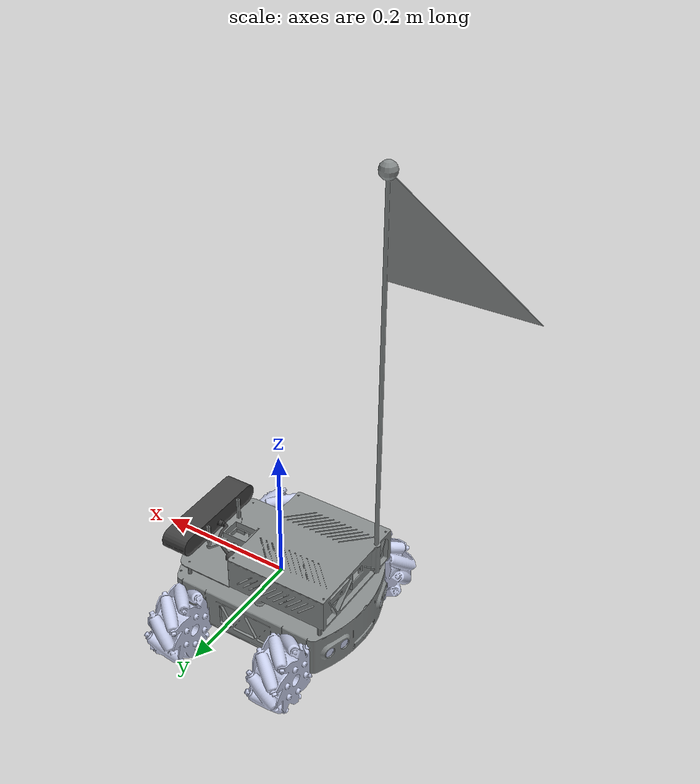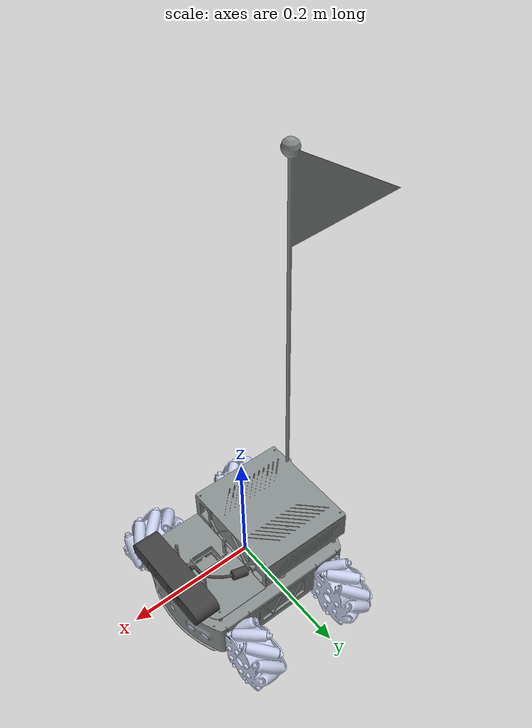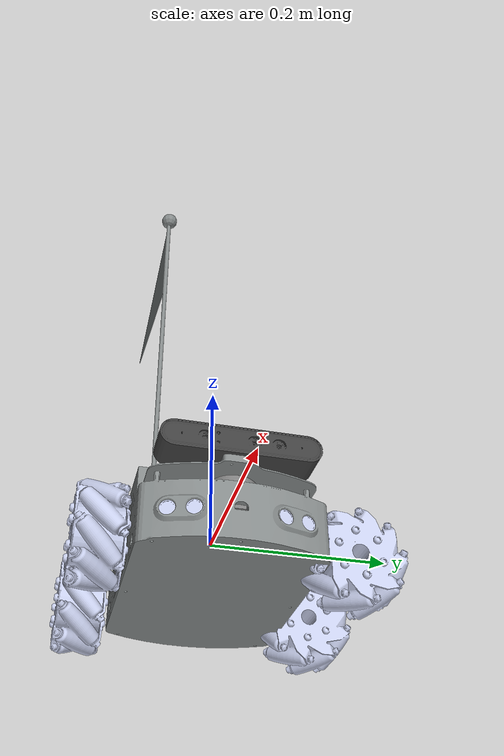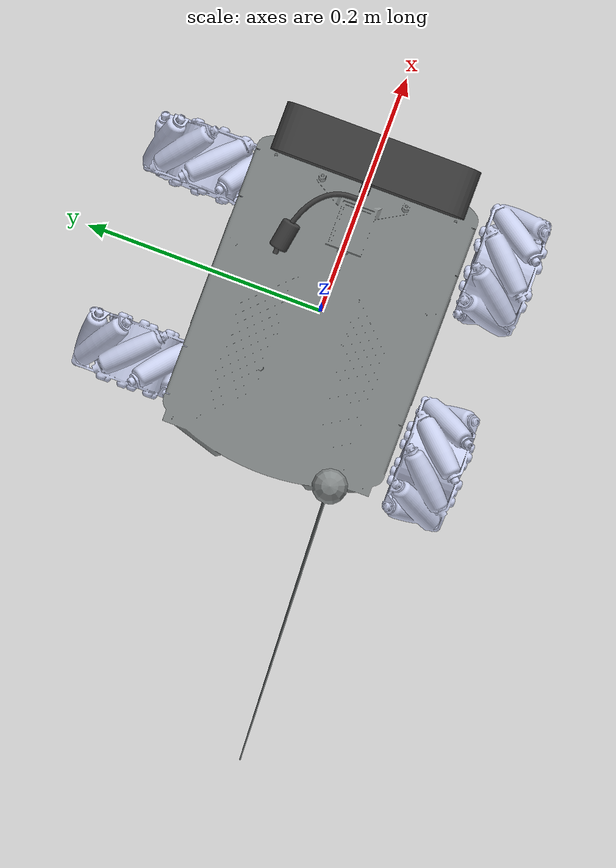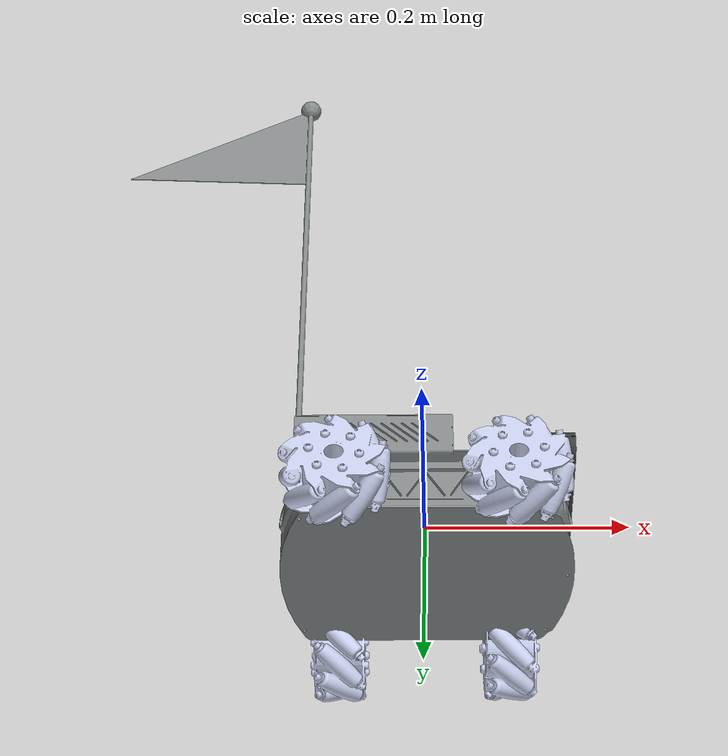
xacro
<?xml version="1.0" encoding="utf-8"?>
<robot
  name="robot_base" xmlns:xacro="http://www.ros.org/wiki/xacro">
  <xacro:property name="radius" value="0.055" />
  <xacro:property name="length" value="0.05" />
  <xacro:property name="wheel_orientation" value="1 0 0" />
  <xacro:property name="collision_transform" value="0 1.57079632679 1.57079632679" />

  <link
    name="base_link">
    <inertial>
      <origin
        xyz="-0.0111443854086884 -0.000831975562567948 0.00395208351304286"
        rpy="0 0 0" />
      <mass
        value="2.57903452705291" />
      <inertia
        ixx="0.010097194230352"
        ixy="-4.37392111784297E-06"
        ixz="0.000240822381205553"
        iyy="0.0132093250149844"
        iyz="7.47840581370496E-07"
        izz="0.020314109789297" />
    </inertial>
    <visual>
      <origin
        xyz="0 0 0"
        rpy="0 0 0" />
      <geometry>
        <mesh
          filename="package://mirte_description/meshes/base_link.STL" />
      </geometry>
      <material
        name="">
        <color
          rgba="0.529411764705882 0.549019607843137 0.549019607843137 1" />
      </material>
    </visual>
    <collision>
      <origin
        xyz="0 0 0"
        rpy="0 0 0" />
      <geometry>
        <mesh
          filename="package://mirte_description/meshes/base_link.STL" />
      </geometry>
    </collision>
  </link>
  <link
    name="front_left_wheel_link">
    <inertial>
      <origin
        xyz="-1.12107309546694E-10 6.41072041116242E-05 2.92491794673388E-10"
        rpy="0 0 0" />
      <mass
        value="0.266614983225976" />
      <inertia
        ixx="8.05457942774813E-05"
        ixy="-1.2260463258983E-14"
        ixz="1.96734401516725E-15"
        iyy="9.31956038960016E-05"
        iyz="-9.68885005345804E-15"
        izz="8.05457942705124E-05" />
    </inertial>
    <visual>
      <origin
        xyz="0 0 0"
        rpy="0 0 0" />
      <geometry>
        <mesh
          filename="package://mirte_description/meshes/front_left_wheel_link.STL" />
      </geometry>
      <material
        name="">
        <color
          rgba="0.792156862745098 0.819607843137255 0.933333333333333 1" />
      </material>
    </visual>
    <collision>
      <origin
        xyz="0 0 0"
        rpy="${collision_transform}" />
      <geometry>
        <cylinder radius="${radius}" length="${length}" />
      </geometry>
    </collision>
  </link>
  <joint
    name="front_left_wheel_joint"
    type="continuous">
    <origin
      xyz="0.085 0.128 -0.0455"
      rpy="0 0 0" />
    <parent
      link="base_link" />
    <child
      link="front_left_wheel_link" />
    <axis
      xyz="0 -1 0" />
  </joint>
  <link
    name="front_right_wheel_link">
    <inertial>
      <origin
        xyz="-1.90001653299632E-10 6.41072041136781E-05 2.12521250597675E-10"
        rpy="0 0 0" />
      <mass
        value="0.266614983226051" />
      <inertia
        ixx="8.05457942757E-05"
        ixy="-7.6916734798387E-14"
        ixz="-4.58661925987117E-15"
        iyy="9.31956038947894E-05"
        iyz="-9.60110972210022E-15"
        izz="8.05457942710755E-05" />
    </inertial>
    <visual>
      <origin
        xyz="0 0 0"
        rpy="0 0 0" />
      <geometry>
        <mesh
          filename="package://mirte_description/meshes/front_right_wheel_link.STL" />
      </geometry>
      <material
        name="">
        <color
          rgba="0.792156862745098 0.819607843137255 0.933333333333333 1" />
      </material>
    </visual>
    <collision>
      <origin
        xyz="0 0 0"
        rpy="${collision_transform}" />
      <geometry>
        <cylinder radius="${radius}" length="${length}" />
      </geometry>
    </collision>
  </link>
  <joint
    name="front_right_wheel_joint"
    type="continuous">
    <origin
      xyz="0.085 -0.128 -0.0455"
      rpy="0 0 0" />
    <parent
      link="base_link" />
    <child
      link="front_right_wheel_link" />
    <axis
      xyz="0 -1 0" />
  </joint>
  <link
    name="rear_left_wheel_link">
    <inertial>
      <origin
        xyz="-1.90001639421844E-10 6.41072041137336E-05 2.12521319986614E-10"
        rpy="0 0 0" />
      <mass
        value="0.266614983226051" />
      <inertia
        ixx="8.05457942756754E-05"
        ixy="-7.69042802358516E-14"
        ixz="-4.57395491293476E-15"
        iyy="9.31956038947576E-05"
        iyz="-9.59312925333487E-15"
        izz="8.05457942710471E-05" />
    </inertial>
    <visual>
      <origin
        xyz="0 0 0"
        rpy="0 0 0" />
      <geometry>
        <mesh
          filename="package://mirte_description/meshes/rear_left_wheel_link.STL" />
      </geometry>
      <material
        name="">
        <color
          rgba="0.792156862745098 0.819607843137255 0.933333333333333 1" />
      </material>
    </visual>
    <collision>
      <origin
        xyz="0 0 0"
        rpy="${collision_transform}" />
      <geometry>
        <cylinder radius="${radius}" length="${length}" />
      </geometry>
    </collision>
  </link>
  <joint
    name="rear_left_wheel_joint"
    type="continuous">
    <origin
      xyz="-0.085 0.128 -0.0455"
      rpy="0 0 0" />
    <parent
      link="base_link" />
    <child
      link="rear_left_wheel_link" />
    <axis
      xyz="0 -1 0" />
  </joint>
  <link
    name="rear_right_wheel_link">
    <inertial>
      <origin
        xyz="-1.00091421262327E-10 6.41072041089319E-05 2.94731093697376E-10"
        rpy="0 0 0" />
      <mass
        value="0.26661498322592" />
      <inertia
        ixx="8.05457942778204E-05"
        ixy="-1.2652000339339E-14"
        ixz="4.82096941386991E-17"
        iyy="9.31956038962011E-05"
        iyz="-1.75713136841005E-14"
        izz="8.05457942703287E-05" />
    </inertial>
    <visual>
      <origin
        xyz="0 0 0"
        rpy="0 0 0" />
      <geometry>
        <mesh
          filename="package://mirte_description/meshes/rear_right_wheel_link.STL" />
      </geometry>
      <material
        name="">
        <color
          rgba="0.792156862745098 0.819607843137255 0.933333333333333 1" />
      </material>
    </visual>
    <collision>
      <origin
        xyz="0 0 0"
        rpy="${collision_transform}" />
      <geometry>
        <cylinder radius="${radius}" length="${length}" />
      </geometry>
    </collision>
  </link>
  <joint
    name="rear_right_wheel_joint"
    type="continuous">
    <origin
      xyz="-0.085 -0.128 -0.0455"
      rpy="0 0 0" />
    <parent
      link="base_link" />
    <child
      link="rear_right_wheel_link" />
    <axis
      xyz="0 -1 0" />
  </joint>
  <link
    name="camera_link">
    <inertial>
      <origin
        xyz="-0.0222605572085065 0.00132191545179521 -0.000392007230496989"
        rpy="0 0 0" />
      <mass
        value="0.188133922243291" />
      <inertia
        ixx="0.000408304025984058"
        ixy="1.91366258287762E-05"
        ixz="-4.27256164755698E-06"
        iyy="6.91459464023262E-05"
        iyz="2.54332903063166E-06"
        izz="0.00044907482518408" />
    </inertial>
    <visual>
      <origin
        xyz="0 0 0"
        rpy="0 0 0" />
      <geometry>
        <mesh
          filename="package://mirte_description/meshes/camera_link.STL" />
      </geometry>
      <material
        name="">
        <color
          rgba="0.250980392156863 0.250980392156863 0.250980392156863 1" />
      </material>
    </visual>
    <collision>
      <origin
        xyz="0 0 0"
        rpy="0 0 0" />
      <geometry>
        <mesh
          filename="package://mirte_description/meshes/camera_link.STL" />
      </geometry>
    </collision>
  </link>
  <joint
    name="camera_joint"
    type="fixed">
    <origin
      xyz="0.14666 0 0.0427"
      rpy="0 0 0" />
    <parent
      link="base_link" />
    <child
      link="camera_link" />
    <axis
      xyz="0 0 0" />
  </joint>
  <link
    name="lidar_link">
    <inertial>
      <origin
        xyz="-3.97749846947626E-10 -9.54386087724289E-05 -0.0118651639742243"
        rpy="0 0 0" />
      <mass
        value="0.100511981883415" />
      <inertia
        ixx="3.39518063996325E-05"
        ixy="-2.92284267117192E-13"
        ixz="1.62111209503273E-12"
        iyy="3.44778101670497E-05"
        iyz="-1.18155796478011E-07"
        izz="4.1935853096105E-05" />
    </inertial>
    <visual>
      <origin
        xyz="0 0 0"
        rpy="0 0 0" />
      <geometry>
        <mesh
          filename="package://mirte_description/meshes/lidar_link.STL" />
      </geometry>
      <material
        name="">
        <color
          rgba="0.501960784313725 0.501960784313725 0.501960784313725 1" />
      </material>
    </visual>
    <collision>
      <origin
        xyz="0 0 0"
        rpy="0 0 0" />
      <geometry>
        <mesh
          filename="package://mirte_description/meshes/lidar_link.STL" />
      </geometry>
    </collision>
  </link>
  <joint
    name="lidar_joint"
    type="fixed">
    <origin
      xyz="0.1005 0 0.0072113"
      rpy="0 0 0" />
    <parent
      link="base_link" />
    <child
      link="lidar_link" />
    <axis
      xyz="0 0 0" />
  </joint>
  <link
    name="front_right_ultrasound_link">
    <inertial>
      <origin
        xyz="4.30733527063271E-05 0.00367564883489799 6.9913657863175E-05"
        rpy="0 0 0" />
      <mass
        value="0.00383513951999245" />
      <inertia
        ixx="1.59365628586767E-07"
        ixy="8.54250314742497E-10"
        ixz="-3.40905422018182E-09"
        iyy="7.6875152346034E-07"
        iyz="-2.65062440645525E-09"
        izz="7.26221149125632E-07" />
    </inertial>
    <visual>
      <origin
        xyz="0 0 0"
        rpy="0 0 0" />
      <geometry>
        <mesh
          filename="package://mirte_description/meshes/front_right_ultrasound_link.STL" />
      </geometry>
      <material
        name="">
        <color
          rgba="0.792156862745098 0.819607843137255 0.933333333333333 1" />
      </material>
    </visual>
    <collision>
      <origin
        xyz="0 0 0"
        rpy="0 0 0" />
      <geometry>
        <mesh
          filename="package://mirte_description/meshes/front_right_ultrasound_link.STL" />
      </geometry>
    </collision>
  </link>
  <joint
    name="front_right_ultrasound_joint"
    type="fixed">
    <origin
      xyz="0.12028 -0.052978 -0.031"
      rpy="0 0 -1.8675" />
    <parent
      link="base_link" />
    <child
      link="front_right_ultrasound_link" />
    <axis
      xyz="0 0 0" />
  </joint>
  <link
    name="front_left_ultrasound_link">
    <inertial>
      <origin
        xyz="-4.30733527062924E-05 -0.00367564883489804 6.99136578631437E-05"
        rpy="0 0 0" />
      <mass
        value="0.00383513951999246" />
      <inertia
        ixx="1.59365628586768E-07"
        ixy="8.54250314742616E-10"
        ixz="3.40905422018196E-09"
        iyy="7.68751523460337E-07"
        iyz="2.65062440645508E-09"
        izz="7.26221149125628E-07" />
    </inertial>
    <visual>
      <origin
        xyz="0 0 0"
        rpy="0 0 0" />
      <geometry>
        <mesh
          filename="package://mirte_description/meshes/front_left_ultrasound_link.STL" />
      </geometry>
      <material
        name="">
        <color
          rgba="0.792156862745098 0.819607843137255 0.933333333333333 1" />
      </material>
    </visual>
    <collision>
      <origin
        xyz="0 0 0"
        rpy="0 0 0" />
      <geometry>
        <mesh
          filename="package://mirte_description/meshes/front_left_ultrasound_link.STL" />
      </geometry>
    </collision>
  </link>
  <joint
    name="front_left_ultrasound_joint"
    type="fixed">
    <origin
      xyz="0.12028 0.052978 -0.031"
      rpy="0 0 1.8675" />
    <parent
      link="base_link" />
    <child
      link="front_left_ultrasound_link" />
    <axis
      xyz="0 0 0" />
  </joint>
  <link
    name="rear_left_ultrasound_link">
    <inertial>
      <origin
        xyz="4.30733527062716E-05 0.00367564883489802 6.99136578631784E-05"
        rpy="0 0 0" />
      <mass
        value="0.00383513951999244" />
      <inertia
        ixx="1.59365628586767E-07"
        ixy="8.54250314742189E-10"
        ixz="-3.40905422018205E-09"
        iyy="7.6875152346034E-07"
        iyz="-2.65062440645534E-09"
        izz="7.26221149125632E-07" />
    </inertial>
    <visual>
      <origin
        xyz="0 0 0"
        rpy="0 0 0" />
      <geometry>
        <mesh
          filename="package://mirte_description/meshes/rear_left_ultrasound_link.STL" />
      </geometry>
      <material
        name="">
        <color
          rgba="0.792156862745098 0.819607843137255 0.933333333333333 1" />
      </material>
    </visual>
    <collision>
      <origin
        xyz="0 0 0"
        rpy="0 0 0" />
      <geometry>
        <mesh
          filename="package://mirte_description/meshes/rear_left_ultrasound_link.STL" />
      </geometry>
    </collision>
  </link>
  <joint
    name="rear_left_ultrasound_joint"
    type="fixed">
    <origin
      xyz="-0.11919 0.056561 -0.031"
      rpy="0 0 1.2741" />
    <parent
      link="base_link" />
    <child
      link="rear_left_ultrasound_link" />
    <axis
      xyz="0 0 0" />
  </joint>
  <link
    name="rear_right_ultrasound_link">
    <inertial>
      <origin
        xyz="4.30733527062716E-05 0.00367564883489802 6.99136578631541E-05"
        rpy="0 0 0" />
      <mass
        value="0.00383513951999245" />
      <inertia
        ixx="1.59365628586768E-07"
        ixy="8.54250314743036E-10"
        ixz="-3.40905422018172E-09"
        iyy="7.68751523460337E-07"
        iyz="-2.65062440645517E-09"
        izz="7.26221149125628E-07" />
    </inertial>
    <visual>
      <origin
        xyz="0 0 0"
        rpy="0 0 0" />
      <geometry>
        <mesh
          filename="package://mirte_description/meshes/rear_right_ultrasound_link.STL" />
      </geometry>
      <material
        name="">
        <color
          rgba="0.792156862745098 0.819607843137255 0.933333333333333 1" />
      </material>
    </visual>
    <collision>
      <origin
        xyz="0 0 0"
        rpy="0 0 0" />
      <geometry>
        <mesh
          filename="package://mirte_description/meshes/rear_right_ultrasound_link.STL" />
      </geometry>
    </collision>
  </link>
  <joint
    name="rear_right_ultrasound_joint"
    type="fixed">
    <origin
      xyz="-0.119187021096338 -0.0565606470918482 -0.031"
      rpy="0 0 1.86750229963393" />
    <parent
      link="base_link" />
    <child
      link="rear_right_ultrasound_link" />
    <axis
      xyz="0 0 0" />
  </joint>

  <transmission name="front_left_wheel_trans">
      <type>transmission_interface/SimpleTransmission</type>
      <joint name="front_left_wheel_joint">
        <hardwareInterface>hardware_interface/VelocityJointInterface</hardwareInterface>
      </joint>
      <actuator name="front_left_wheel_actuator">
        <mechanicalReduction>1</mechanicalReduction>
      </actuator>
  </transmission>

  <transmission name="front_right_wheel_trans">
      <type>transmission_interface/SimpleTransmission</type>
      <joint name="front_right_wheel_joint">
        <hardwareInterface>hardware_interface/VelocityJointInterface</hardwareInterface>
      </joint>
      <actuator name="front_right_wheel_actuator">
        <mechanicalReduction>1</mechanicalReduction>
      </actuator>
  </transmission>

  <transmission name="rear_right_wheel_trans">
      <type>transmission_interface/SimpleTransmission</type>
      <joint name="rear_right_wheel_joint">
        <hardwareInterface>hardware_interface/VelocityJointInterface</hardwareInterface>
      </joint>
      <actuator name="rear_right_wheel_actuator">
        <mechanicalReduction>1</mechanicalReduction>
      </actuator>
    </transmission>

  <transmission name="rear_left_wheel_trans">
      <type>transmission_interface/SimpleTransmission</type>
      <joint name="rear_left_wheel_joint">
        <hardwareInterface>hardware_interface/VelocityJointInterface</hardwareInterface>
      </joint>
      <actuator name="rear_left_wheel_actuator">
        <mechanicalReduction>1</mechanicalReduction>
      </actuator>
    </transmission>

</robot>
